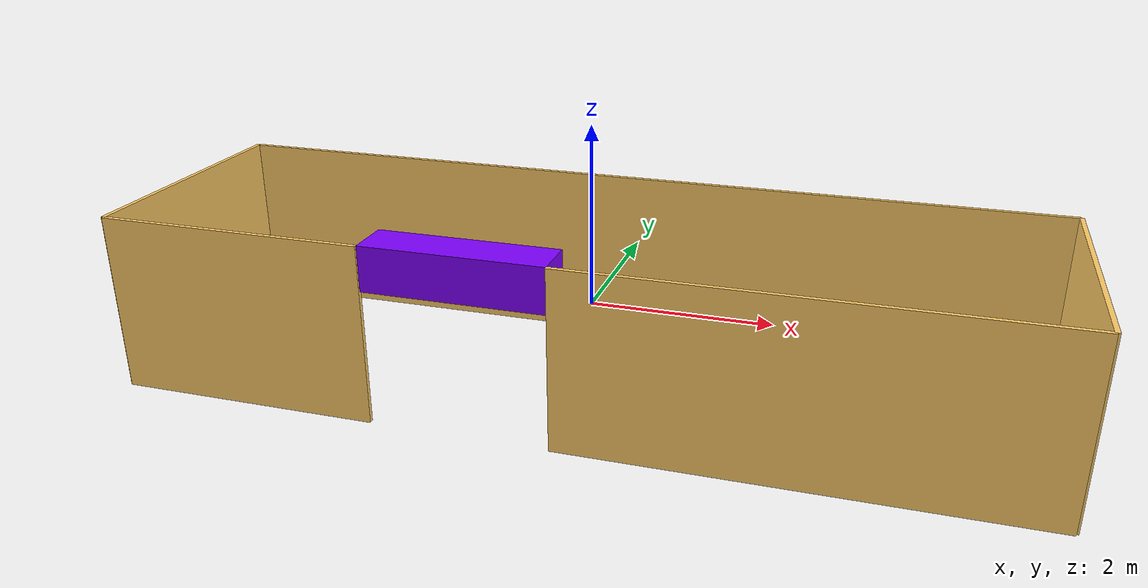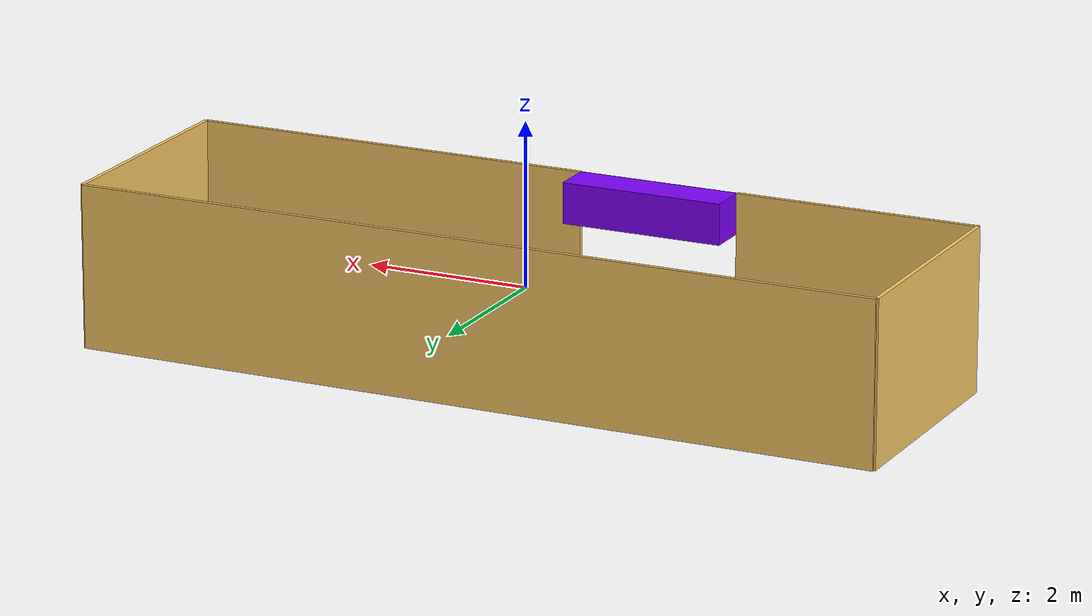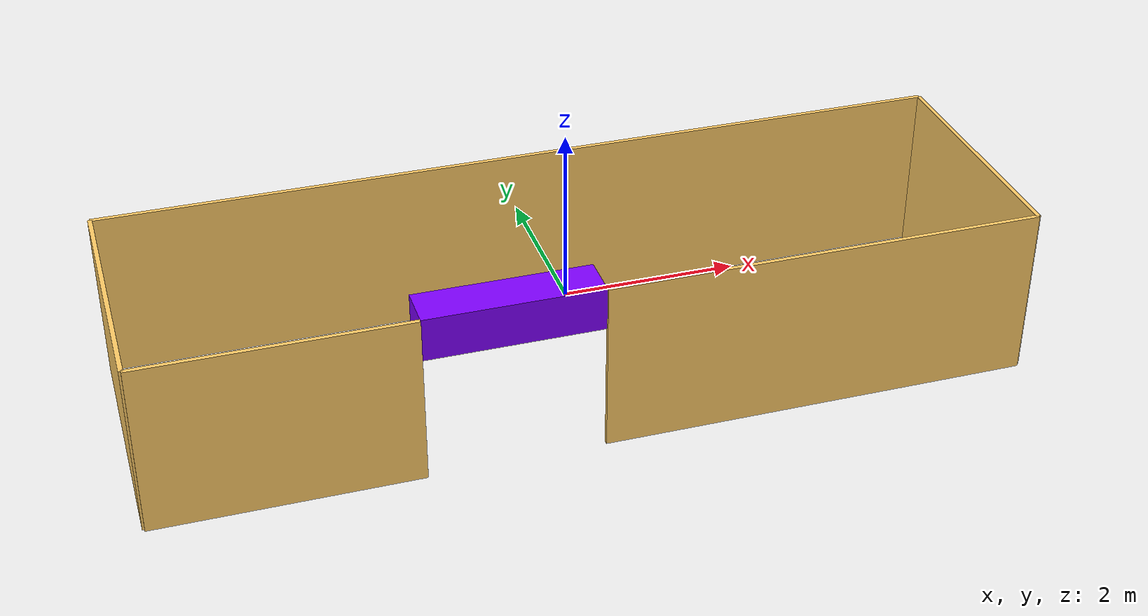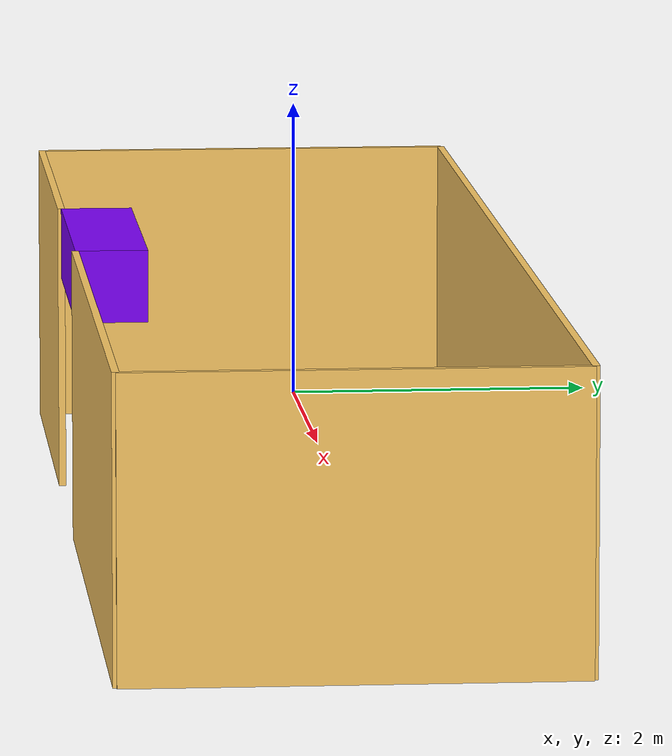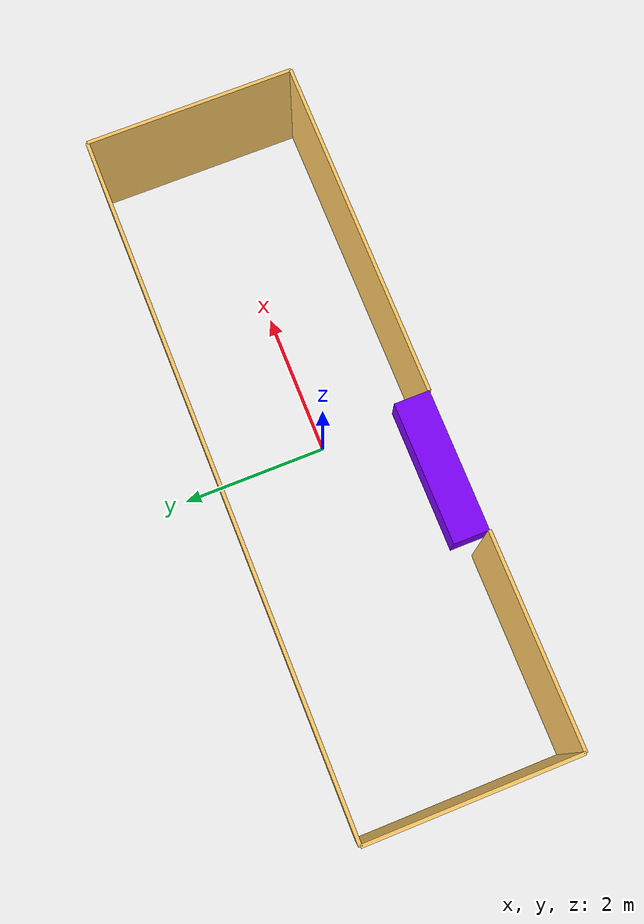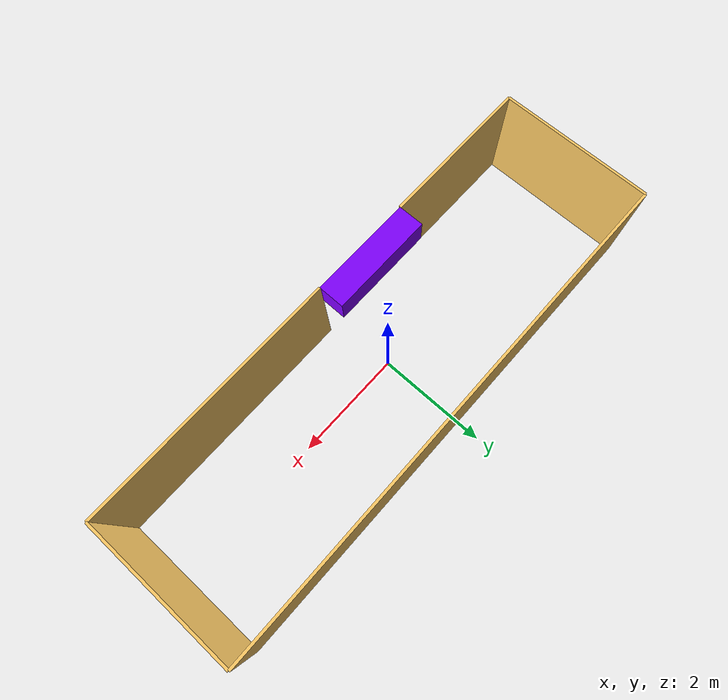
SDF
<?xml version="1.0"?>
<sdf version="1.11">
    <model name="bonus_zone">
        <pose>0 0 0 0 0 0</pose>
        <static>true</static>
        <link name="link">

            <collision name="bonus_zone_left_wall_collision">
                <pose>-5.0 0 0 0 0 0</pose>
                <geometry>
                    <box>
                        <size>0.05 3.0 2.0 0 0 0</size>
                    </box>
                </geometry>
            </collision>

            <collision name="bonus_zone_right_wall_collision">
                <pose>5.0 0 0 0 0 0</pose>
                <geometry>
                    <box>
                        <size>0.05 3.0 2.0 0 0 0</size>
                    </box>
                </geometry>
            </collision>

            <collision name="bonus_zone_front_wall_left_part_collision">
                <pose>-3.5 -1.5 0 0 0 0</pose>
                <geometry>
                    <box>
                        <size>3.0 0.05 2.0 0 0 0</size>
                    </box>
                </geometry>
            </collision>

            <collision name="bonus_zone_front_wall_right_part_collision">
                <pose>2.5 -1.5 0 0 0 0</pose>
                <geometry>
                    <box>
                        <size>5.0 0.05 2.0 0 0 0</size>
                    </box>
                </geometry>
            </collision>

            <collision name="bonus_zone_back_wall_collision">
                <pose>0 1.5 0 0 0 0</pose>
                <geometry>
                    <box>
                        <size>10.0 0.05 2.0 0 0 0</size>
                    </box>
                </geometry>
            </collision>

            <collision name="bonus_zone_high_beam_collision">
                <pose>-1.0 -1.25 0.75 0 0 0</pose>
                <geometry>
                    <box>
                        <size>2.0 0.5 0.5 0 0 0</size>
                    </box>
                </geometry>
            </collision>

            <visual name="bonus_zone_left_wall_visual">
                <pose>-5.0 0 0 0 0 0</pose>
                <geometry>
                    <box>
                        <size>0.05 3.0 2.0 0 0 0</size>
                    </box>
                </geometry>
                <material>
                    <ambient>1.0 0.8 0.4 1.0</ambient>
                    <diffuse>1.0 0.8 0.4 1.0</diffuse>
                    <specular>1.0 0.8 0.4 1.0</specular>
                </material>
            </visual>

            <visual name="bonus_zone_right_wall_visual">
                <pose>5.0 0 0 0 0 0</pose>
                <geometry>
                    <box>
                        <size>0.05 3.0 2.0 0 0 0</size>
                    </box>
                </geometry>
                <material>
                    <ambient>1.0 0.8 0.4 1.0</ambient>
                    <diffuse>1.0 0.8 0.4 1.0</diffuse>
                    <specular>1.0 0.8 0.4 1.0</specular>
                </material>
            </visual>

            <visual name="bonus_zone_front_wall_left_part_visual">
                <pose>-3.5 -1.5 0 0 0 0</pose>
                <geometry>
                    <box>
                        <size>3.0 0.05 2.0 0 0 0</size>
                    </box>
                </geometry>
                <material>
                    <ambient>1.0 0.8 0.4 1.0</ambient>
                    <diffuse>1.0 0.8 0.4 1.0</diffuse>
                    <specular>1.0 0.8 0.4 1.0</specular>
                </material>
            </visual>

            <visual name="bonus_zone_front_wall_right_part_visual">
                <pose>2.5 -1.5 0 0 0 0</pose>
                <geometry>
                    <box>
                        <size>5.0 0.05 2.0 0 0 0</size>
                    </box>
                </geometry>
                <material>
                    <ambient>1.0 0.8 0.4 1.0</ambient>
                    <diffuse>1.0 0.8 0.4 1.0</diffuse>
                    <specular>1.0 0.8 0.4 1.0</specular>
                </material>
            </visual>

            <visual name="bonus_zone_back_wall_visual">
                <pose>0 1.5 0 0 0 0</pose>
                <geometry>
                    <box>
                        <size>10.0 0.05 2.0 0 0 0</size>
                    </box>
                </geometry>
                <material>
                    <ambient>1.0 0.8 0.4 1.0</ambient>
                    <diffuse>1.0 0.8 0.4 1.0</diffuse>
                    <specular>1.0 0.8 0.4 1.0</specular>
                </material>
            </visual>

            <visual name="bonus_zone_high_beam_visual">
                <pose>-1.0 -1.25 0.75 0 0 0</pose>
                <geometry>
                    <box>
                        <size>2.0 0.5 0.5 0 0 0</size>
                    </box>
                </geometry>
                <material>
                    <ambient>0.5 0 1.0 1.0</ambient>
                    <diffuse>0.5 0 1.0 1.0</diffuse>
                    <specular>0.5 0 1.0 1.0</specular>
                </material>
            </visual>

        </link>
    </model>
</sdf>
